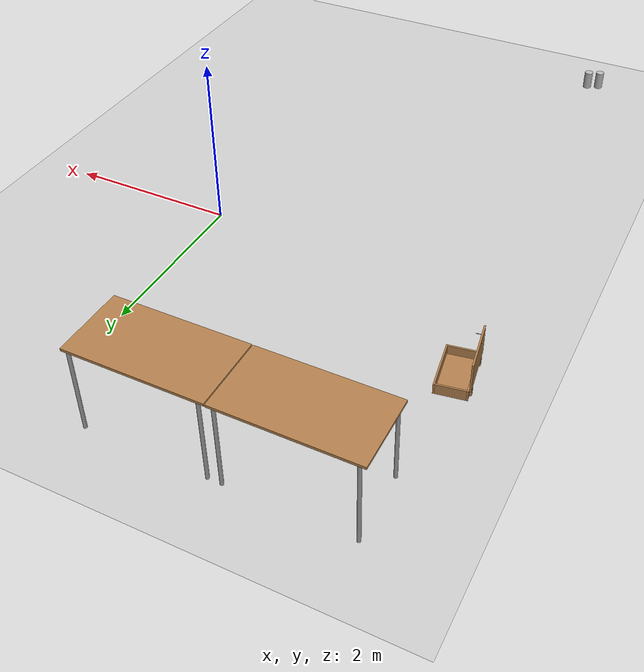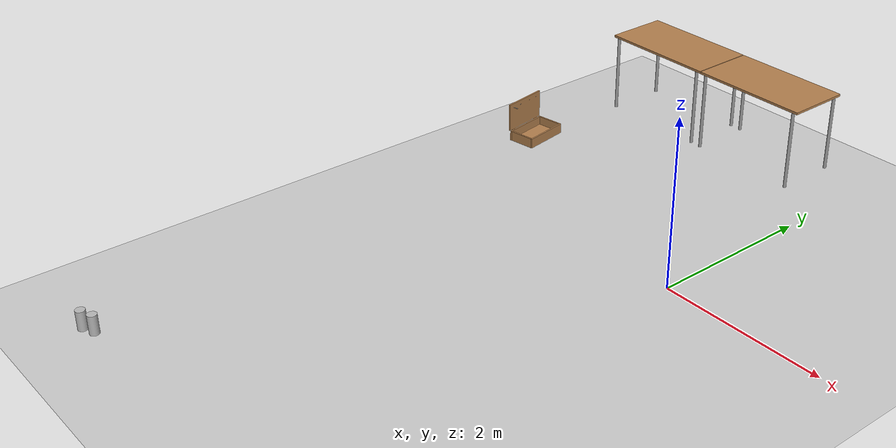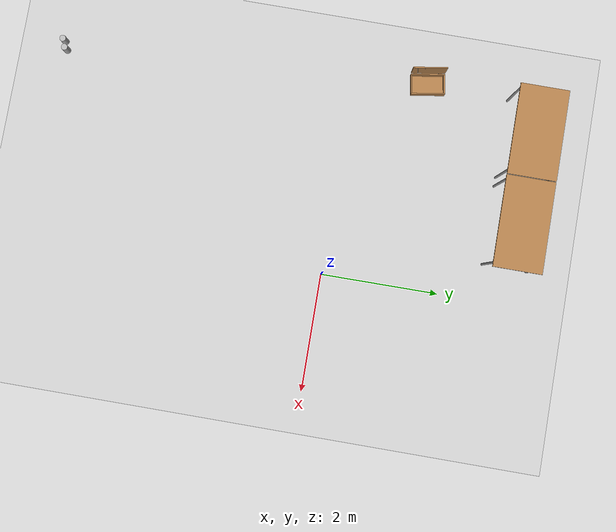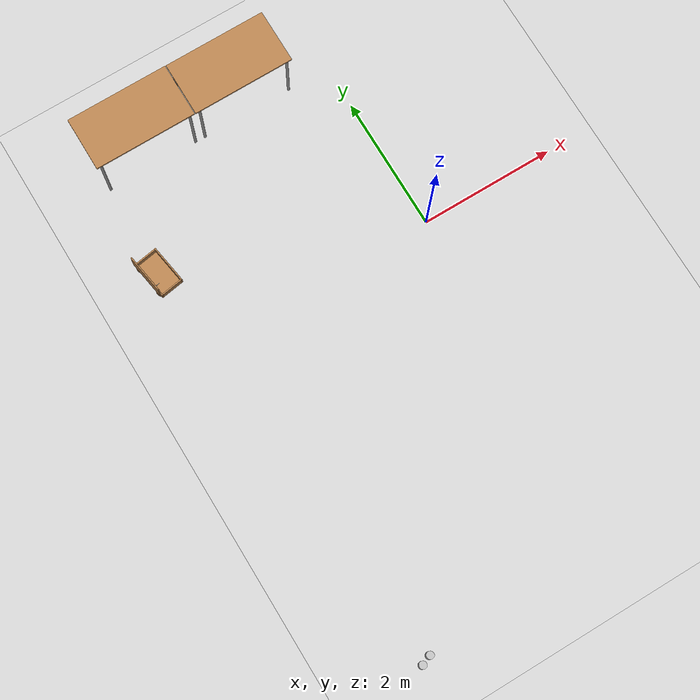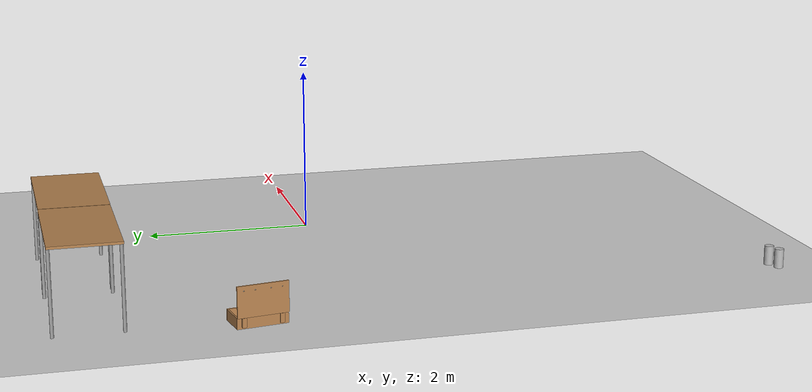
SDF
<sdf version="1.7">
 <world name="default">
  <model name="ground_plane">
   <static>1</static>
   <link name="link">
    <collision name="collision">
     <geometry><plane><normal>0 0 1</normal><size>20 15</size></plane></geometry>
     <surface>
      <contact><collide_bitmask>65535</collide_bitmask></contact>
      <friction><ode><mu>100</mu><mu2>50</mu2></ode></friction>
     </surface>
    </collision>
    <visual name="visual">
     <cast_shadows>0</cast_shadows>
     <geometry><plane><normal>0 0 1</normal><size>20 15</size></plane></geometry>
     <material>
      <script>
       <uri>model://TheFlyingAda/materials/scripts</uri>
       <uri>model://TheFlyingAda/materials/textures</uri>
       <name>Wooden/Floor</name>
      </script>
     </material>
    </visual>
   </link>
  </model>
  <model name="table">
   <static>1</static>
   <link name="link">
    <collision name="surface">
     <pose>0 0 1 0 -0 0</pose>
     <geometry><box><size>1.5 0.8 0.03</size></box></geometry>
     <surface><friction><ode><mu>0.6</mu><mu2>0.6</mu2></ode></friction></surface>
    </collision>
    <visual name="visual1">
     <pose>0 0 1 0 -0 0</pose>
     <geometry><box><size>1.5 0.8 0.03</size></box></geometry>
     <material>
      <script><uri>file://media/materials/scripts/gazebo.material</uri><name>Gazebo/Wood</name></script>
     </material>
    </visual>
    <collision name="front_left_leg">
     <pose>0.68 0.38 0.5 0 -0 0</pose>
     <geometry><cylinder><radius>0.02</radius><length>1</length></cylinder></geometry>
    </collision>
    <visual name="front_left_leg">
     <pose>0.68 0.38 0.5 0 -0 0</pose>
     <geometry><cylinder><radius>0.02</radius><length>1</length></cylinder></geometry>
     <material>
      <script><uri>file://media/materials/scripts/gazebo.material</uri><name>Gazebo/Grey</name></script>
     </material>
    </visual>
    <collision name="front_right_leg">
     <pose>0.68 -0.38 0.5 0 -0 0</pose>
     <geometry><cylinder><radius>0.02</radius><length>1</length></cylinder></geometry>
    </collision>
    <visual name="front_right_leg">
     <pose>0.68 -0.38 0.5 0 -0 0</pose>
     <geometry><cylinder><radius>0.02</radius><length>1</length></cylinder></geometry>
     <material>
      <script><uri>file://media/materials/scripts/gazebo.material</uri><name>Gazebo/Grey</name></script>
     </material>
    </visual>
    <collision name="back_right_leg">
     <pose>-0.68 -0.38 0.5 0 -0 0</pose>
     <geometry><cylinder><radius>0.02</radius><length>1</length></cylinder></geometry>
    </collision>
    <visual name="back_right_leg">
     <pose>-0.68 -0.38 0.5 0 -0 0</pose>
     <geometry><cylinder><radius>0.02</radius><length>1</length></cylinder></geometry>
     <material>
      <script><uri>file://media/materials/scripts/gazebo.material</uri><name>Gazebo/Grey</name></script>
     </material>
    </visual>
    <collision name="back_left_leg">
     <pose>-0.68 0.38 0.5 0 -0 0</pose>
     <geometry><cylinder><radius>0.02</radius><length>1</length></cylinder></geometry>
    </collision>
    <visual name="back_left_leg">
     <pose>-0.68 0.38 0.5 0 -0 0</pose>
     <geometry><cylinder><radius>0.02</radius><length>1</length></cylinder></geometry>
     <material>
      <script><uri>file://media/materials/scripts/gazebo.material</uri><name>Gazebo/Grey</name></script>
     </material>
    </visual>
   </link>
   <pose>-2.82183 3.05436 0 0 -0 0</pose>
  </model>
  <model name="Table">
   <static>1</static>
   <link name="link">
    <collision name="surface">
     <pose>0 0 1 0 -0 0</pose>
     <geometry><box><size>1.5 0.8 0.03</size></box></geometry>
     <surface><friction><ode><mu>0.6</mu><mu2>0.6</mu2></ode></friction></surface>
    </collision>
    <visual name="visual1">
     <pose>0 0 1 0 -0 0</pose>
     <geometry><box><size>1.5 0.8 0.03</size></box></geometry>
     <material>
      <diffuse>1 1 1 1</diffuse>
      <script><uri>file://media/materials/scripts/gazebo.material</uri><name>Gazebo/Wood</name></script>
      <pbr>
       <metal>
        <albedo_map>https://fuel.ignitionrobotics.org/1.0/malbonico/models/table/1/files/Table_Diffuse.jpg</albedo_map>
       </metal>
      </pbr>
     </material>
    </visual>
    <collision name="front_left_leg">
     <pose>0.68 0.38 0.5 0 -0 0</pose>
     <geometry><cylinder><radius>0.02</radius><length>1</length></cylinder></geometry>
    </collision>
    <visual name="front_left_leg">
     <pose>0.68 0.38 0.5 0 -0 0</pose>
     <geometry><cylinder><radius>0.02</radius><length>1</length></cylinder></geometry>
     <material>
      <diffuse>0.5 0.5 0.5 1</diffuse>
      <script><uri>file://media/materials/scripts/gazebo.material</uri><name>Gazebo/Grey</name></script>
     </material>
    </visual>
    <collision name="front_right_leg">
     <pose>0.68 -0.38 0.5 0 -0 0</pose>
     <geometry><cylinder><radius>0.02</radius><length>1</length></cylinder></geometry>
    </collision>
    <visual name="front_right_leg">
     <pose>0.68 -0.38 0.5 0 -0 0</pose>
     <geometry><cylinder><radius>0.02</radius><length>1</length></cylinder></geometry>
     <material>
      <diffuse>0.5 0.5 0.5 1</diffuse>
      <script><uri>file://media/materials/scripts/gazebo.material</uri><name>Gazebo/Grey</name></script>
     </material>
    </visual>
    <collision name="back_right_leg">
     <pose>-0.68 -0.38 0.5 0 -0 0</pose>
     <geometry><cylinder><radius>0.02</radius><length>1</length></cylinder></geometry>
    </collision>
    <visual name="back_right_leg">
     <pose>-0.68 -0.38 0.5 0 -0 0</pose>
     <geometry><cylinder><radius>0.02</radius><length>1</length></cylinder></geometry>
     <material>
      <diffuse>0.5 0.5 0.5 1</diffuse>
      <script><uri>file://media/materials/scripts/gazebo.material</uri><name>Gazebo/Grey</name></script>
     </material>
    </visual>
    <collision name="back_left_leg">
     <pose>-0.68 0.38 0.5 0 -0 0</pose>
     <geometry><cylinder><radius>0.02</radius><length>1</length></cylinder></geometry>
    </collision>
    <visual name="back_left_leg">
     <pose>-0.68 0.38 0.5 0 -0 0</pose>
     <geometry><cylinder><radius>0.02</radius><length>1</length></cylinder></geometry>
     <material>
      <diffuse>0.5 0.5 0.5 1</diffuse>
      <script><uri>file://media/materials/scripts/gazebo.material</uri><name>Gazebo/Grey</name></script>
     </material>
    </visual>
   </link>
   <pose>-1.30973 3.0514 0 0 -0 0</pose>
  </model>
  <model name="beer">
   <link name="link">
    <pose>0 0 0.115 0 -0 0</pose>
    <inertial>
     <mass>0.39</mass>
     <inertia><ixx>0.00058</ixx><ixy>0</ixy><ixz>0</ixz><iyy>0.00058</iyy><iyz>0</iyz><izz>0.00019</izz></inertia>
    </inertial>
    <collision name="collision">
     <geometry><cylinder><radius>0.055</radius><length>0.23</length></cylinder></geometry>
    </collision>
    <visual name="visual">
     <geometry><cylinder><radius>0.055</radius><length>0.23</length></cylinder></geometry>
     <material>
      <script>
       <uri>https://fuel.ignitionrobotics.org/1.0/chapulina/models/beer/2/files/materials/scripts</uri>
       <uri>https://fuel.ignitionrobotics.org/1.0/chapulina/models/beer/2/files/materials/textures</uri>
       <name>Beer/Diffuse</name>
      </script>
     </material>
    </visual>
   </link>
   <pose>-3.08461 -4.99605 -7e-06 -1e-06 -0 -0.000116</pose>
  </model>
  <model name="beer_0">
   <link name="link">
    <pose>0 0 0.115 0 -0 0</pose>
    <inertial>
     <mass>0.39</mass>
     <inertia><ixx>0.00058</ixx><ixy>0</ixy><ixz>0</ixz><iyy>0.00058</iyy><iyz>0</iyz><izz>0.00019</izz></inertia>
    </inertial>
    <collision name="collision">
     <geometry><cylinder><radius>0.055</radius><length>0.23</length></cylinder></geometry>
    </collision>
    <visual name="visual">
     <geometry><cylinder><radius>0.055</radius><length>0.23</length></cylinder></geometry>
     <material>
      <script>
       <uri>https://fuel.ignitionrobotics.org/1.0/caguero/models/beer/2/files/materials/scripts</uri>
       <uri>https://fuel.ignitionrobotics.org/1.0/caguero/models/beer/2/files/materials/textures</uri>
       <name>Beer/Diffuse</name>
      </script>
     </material>
    </visual>
   </link>
   <pose>-3.23041 -5.0528 -7e-06 -1e-06 0 -0.000115</pose>
  </model>
  <model name="wooden_case_metal_peg">
   <frame name="wooden_case::__model__" attached_to="wooden_case::base">
    <pose relative_to="__model__">0 0 0 0 -0 0</pose>
   </frame>
   <link name="wooden_case::base">
    <pose relative_to="wooden_case::__model__">0 0 0.024 0 -0 0</pose>
    <inertial>
     <pose>-0.022184 0 0.171592 0 -0 0</pose>
     <mass>3.96264</mass>
     <inertia>
      <ixx>0.213536</ixx>
      <ixy>0</ixy>
      <ixz>0.000779377</ixz>
      <iyy>0.0708943</iyy>
      <iyz>0</iyz>
      <izz>0.154604</izz>
     </inertia>
    </inertial>
    <collision name="collision_back">
     <pose>-0.053975 0 0.1778 0 -0 0</pose>
     <geometry><box><size>0.01905 0.5461 0.3175</size></box></geometry>
     <surface>
      <contact>
       <poissons_ratio>0.347</poissons_ratio>
       <elastic_modulus>8.8e+09</elastic_modulus>
       <ode><kp>100000</kp><kd>100</kd><max_vel>100</max_vel><min_depth>0.001</min_depth></ode>
      </contact>
      <friction>
       <torsional>
        <coefficient>1</coefficient>
        <use_patch_radius>0</use_patch_radius>
        <surface_radius>0.01</surface_radius>
       </torsional>
      </friction>
     </surface>
    </collision>
    <visual name="visual_back">
     <pose>-0.053975 0 0.1778 0 -0 0</pose>
     <geometry><box><size>0.01905 0.5461 0.3175</size></box></geometry>
     <material>
      <script><uri>file://media/materials/scripts/gazebo.material</uri><name>Gazebo/Wood</name></script>
     </material>
    </visual>
    <collision name="collision_bottom">
     <pose>0 0 0.009525 0 -0 0</pose>
     <geometry><box><size>0.127 0.5842 0.01905</size></box></geometry>
     <surface>
      <contact>
       <poissons_ratio>0.347</poissons_ratio>
       <elastic_modulus>8.8e+09</elastic_modulus>
       <ode><kp>100000</kp><kd>100</kd><max_vel>100</max_vel><min_depth>0.001</min_depth></ode>
      </contact>
      <friction>
       <torsional>
        <coefficient>1</coefficient>
        <use_patch_radius>0</use_patch_radius>
        <surface_radius>0.01</surface_radius>
       </torsional>
      </friction>
     </surface>
    </collision>
    <visual name="visual_bottom">
     <pose>0 0 0.009525 0 -0 0</pose>
     <geometry><box><size>0.127 0.5842 0.01905</size></box></geometry>
     <material>
      <script><uri>file://media/materials/scripts/gazebo.material</uri><name>Gazebo/Wood</name></script>
     </material>
    </visual>
    <collision name="collision_top">
     <pose>0 0 0.346075 0 -0 0</pose>
     <geometry><box><size>0.127 0.5842 0.01905</size></box></geometry>
     <surface>
      <contact>
       <poissons_ratio>0.347</poissons_ratio>
       <elastic_modulus>8.8e+09</elastic_modulus>
       <ode><kp>100000</kp><kd>100</kd><max_vel>100</max_vel><min_depth>0.001</min_depth></ode>
      </contact>
      <friction>
       <torsional>
        <coefficient>1</coefficient>
        <use_patch_radius>0</use_patch_radius>
        <surface_radius>0.01</surface_radius>
       </torsional>
      </friction>
     </surface>
    </collision>
    <visual name="visual_top">
     <pose>0 0 0.346075 0 -0 0</pose>
     <geometry><box><size>0.127 0.5842 0.01905</size></box></geometry>
     <material>
      <script><uri>file://media/materials/scripts/gazebo.material</uri><name>Gazebo/Wood</name></script>
     </material>
    </visual>
    <collision name="collision_left">
     <pose>0 -0.282575 0.1778 0 -0 0</pose>
     <geometry><box><size>0.127 0.01905 0.3175</size></box></geometry>
     <surface>
      <contact>
       <poissons_ratio>0.347</poissons_ratio>
       <elastic_modulus>8.8e+09</elastic_modulus>
       <ode><kp>100000</kp><kd>100</kd><max_vel>100</max_vel><min_depth>0.001</min_depth></ode>
      </contact>
      <friction>
       <torsional>
        <coefficient>1</coefficient>
        <use_patch_radius>0</use_patch_radius>
        <surface_radius>0.01</surface_radius>
       </torsional>
      </friction>
     </surface>
    </collision>
    <visual name="visual_left">
     <pose>0 -0.282575 0.1778 0 -0 0</pose>
     <geometry><box><size>0.127 0.01905 0.3175</size></box></geometry>
     <material>
      <script><uri>file://media/materials/scripts/gazebo.material</uri><name>Gazebo/Wood</name></script>
     </material>
    </visual>
    <collision name="collision_right">
     <pose>0 0.282575 0.1778 0 -0 0</pose>
     <geometry><box><size>0.127 0.01905 0.3175</size></box></geometry>
     <surface>
      <contact>
       <poissons_ratio>0.347</poissons_ratio>
       <elastic_modulus>8.8e+09</elastic_modulus>
       <ode><kp>100000</kp><kd>100</kd><max_vel>100</max_vel><min_depth>0.001</min_depth></ode>
      </contact>
      <friction>
       <torsional>
        <coefficient>1</coefficient>
        <use_patch_radius>0</use_patch_radius>
        <surface_radius>0.01</surface_radius>
       </torsional>
      </friction>
     </surface>
    </collision>
    <visual name="visual_right">
     <pose>0 0.282575 0.1778 0 -0 0</pose>
     <geometry><box><size>0.127 0.01905 0.3175</size></box></geometry>
     <material>
      <script><uri>file://media/materials/scripts/gazebo.material</uri><name>Gazebo/Wood</name></script>
     </material>
    </visual>
    <collision name="collision_block_left">
     <pose>0.0095 -0.2151 -0.012 0 -0 0</pose>
     <geometry><box><size>0.108 0.05 0.024</size></box></geometry>
     <surface>
      <contact>
       <poissons_ratio>0.347</poissons_ratio>
       <elastic_modulus>8.8e+09</elastic_modulus>
       <ode><kp>100000</kp><kd>100</kd><max_vel>100</max_vel><min_depth>0.001</min_depth></ode>
      </contact>
      <friction>
       <torsional>
        <coefficient>1</coefficient>
        <use_patch_radius>0</use_patch_radius>
        <surface_radius>0.01</surface_radius>
       </torsional>
      </friction>
     </surface>
    </collision>
    <visual name="visual_block_left">
     <pose>0.0095 -0.2151 -0.012 0 -0 0</pose>
     <geometry><box><size>0.108 0.05 0.024</size></box></geometry>
     <material>
      <script><uri>file://media/materials/scripts/gazebo.material</uri><name>Gazebo/Wood</name></script>
     </material>
    </visual>
    <collision name="collision_block_right">
     <pose>0.0095 0.2151 -0.012 0 -0 0</pose>
     <geometry><box><size>0.108 0.05 0.024</size></box></geometry>
     <surface>
      <contact>
       <poissons_ratio>0.347</poissons_ratio>
       <elastic_modulus>8.8e+09</elastic_modulus>
       <ode><kp>100000</kp><kd>100</kd><max_vel>100</max_vel><min_depth>0.001</min_depth></ode>
      </contact>
      <friction>
       <torsional>
        <coefficient>1</coefficient>
        <use_patch_radius>0</use_patch_radius>
        <surface_radius>0.01</surface_radius>
       </torsional>
      </friction>
     </surface>
    </collision>
    <visual name="visual_block_right">
     <pose>0.0095 0.2151 -0.012 0 -0 0</pose>
     <geometry><box><size>0.108 0.05 0.024</size></box></geometry>
     <material>
      <script><uri>file://media/materials/scripts/gazebo.material</uri><name>Gazebo/Wood</name></script>
     </material>
    </visual>
   </link>
   <link name="wooden_case::lid">
    <pose relative_to="wooden_case::__model__">0.243775 0 0.009525 0 -0 0</pose>
    <inertial>
     <mass>1.97874</mass>
     <inertia>
      <ixx>0.0563367</ixx>
      <ixy>0</ixy>
      <ixz>0</ixz>
      <iyy>0.020911</iyy>
      <iyz>0</iyz>
      <izz>0.0771281</izz>
     </inertia>
    </inertial>
    <collision name="collision">
     <geometry><box><size>0.3556 0.5842 0.01905</size></box></geometry>
     <surface>
      <contact>
       <poissons_ratio>0.347</poissons_ratio>
       <elastic_modulus>8.8e+09</elastic_modulus>
       <ode><kp>100000</kp><kd>100</kd><max_vel>100</max_vel><min_depth>0.001</min_depth></ode>
      </contact>
      <friction>
       <torsional>
        <coefficient>1</coefficient>
        <use_patch_radius>0</use_patch_radius>
        <surface_radius>0.01</surface_radius>
       </torsional>
      </friction>
     </surface>
    </collision>
    <visual name="visual">
     <geometry><box><size>0.3556 0.5842 0.01905</size></box></geometry>
     <material>
      <script><uri>file://media/materials/scripts/gazebo.material</uri><name>Gazebo/Wood</name></script>
     </material>
    </visual>
    <visual name="tee_nut_1">
     <pose>0.122 -0.216 0 0 -0 0</pose>
     <geometry><cylinder><radius>0.00635</radius><length>0.0192405</length></cylinder></geometry>
     <material>
      <script><uri>file://media/materials/scripts/gazebo.material</uri><name>Gazebo/Grey</name></script>
     </material>
    </visual>
    <visual name="tee_nut_2">
     <pose>0.122 -0.088 0 0 -0 0</pose>
     <geometry><cylinder><radius>0.00635</radius><length>0.0192405</length></cylinder></geometry>
     <material>
      <script><uri>file://media/materials/scripts/gazebo.material</uri><name>Gazebo/Grey</name></script>
     </material>
    </visual>
    <visual name="tee_nut_3">
     <pose>0.122 0.088 0 0 -0 0</pose>
     <geometry><cylinder><radius>0.00635</radius><length>0.0192405</length></cylinder></geometry>
     <material>
      <script><uri>file://media/materials/scripts/gazebo.material</uri><name>Gazebo/Grey</name></script>
     </material>
    </visual>
    <visual name="tee_nut_4">
     <pose>0.122 0.216 0 0 -0 0</pose>
     <geometry><cylinder><radius>0.00635</radius><length>0.0192405</length></cylinder></geometry>
     <material>
      <script><uri>file://media/materials/scripts/gazebo.material</uri><name>Gazebo/Grey</name></script>
     </material>
    </visual>
   </link>
   <joint name="wooden_case::lid_hinge" type="revolute">
    <pose>-0.1778 0 0.01905 0 -0 0</pose>
    <parent>wooden_case::base</parent>
    <child>wooden_case::lid</child>
    <axis>
     <xyz>0 1 0</xyz>
     <limit><upper>0.523599</upper><lower>-1.5708</lower></limit>
     <dynamics><spring_reference>0</spring_reference><spring_stiffness>0</spring_stiffness></dynamics>
    </axis>
   </joint>
   <frame name="peg::__model__" attached_to="peg::link">
    <pose relative_to="__model__">0.365774 0.216 0.01905 0 -0 0</pose>
   </frame>
   <link name="peg::link">
    <pose relative_to="peg::__model__">0 0 0.031 0 -0 0</pose>
    <inertial>
     <mass>0.0121</mass>
     <inertia>
      <ixx>3.90898e-06</ixx>
      <ixy>0</ixy>
      <ixz>0</ixz>
      <iyy>3.90898e-06</iyy>
      <iyz>0</iyz>
      <izz>6.58845e-08</izz>
     </inertia>
    </inertial>
    <collision name="collision">
     <geometry><cylinder><radius>0.0033</radius><length>0.062</length></cylinder></geometry>
     <surface>
      <contact>
       <poissons_ratio>0.305</poissons_ratio>
       <elastic_modulus>2e+11</elastic_modulus>
       <ode><kp>100000</kp><kd>100</kd><max_vel>100</max_vel><min_depth>0.001</min_depth></ode>
      </contact>
      <friction>
       <torsional>
        <coefficient>1</coefficient>
        <use_patch_radius>0</use_patch_radius>
        <surface_radius>0.01</surface_radius>
       </torsional>
      </friction>
     </surface>
    </collision>
    <visual name="visual">
     <geometry><cylinder><radius>0.0033</radius><length>0.062</length></cylinder></geometry>
     <material>
      <script><uri>file://media/materials/scripts/gazebo.material</uri><name>Gazebo/Grey</name></script>
     </material>
    </visual>
   </link>
   <joint name="case_peg" type="revolute">
    <child>peg::link</child>
    <parent>wooden_case::lid</parent>
    <axis>
     <xyz>0 0 1</xyz>
     <limit><upper>0</upper><lower>0</lower></limit>
     <dynamics><spring_reference>0</spring_reference><spring_stiffness>0</spring_stiffness></dynamics>
    </axis>
   </joint>
   <pose>-3.73008 1.23033 0.06247 -0.060912 -1.57079 -2.92195</pose>
  </model>
 </world>
</sdf>
